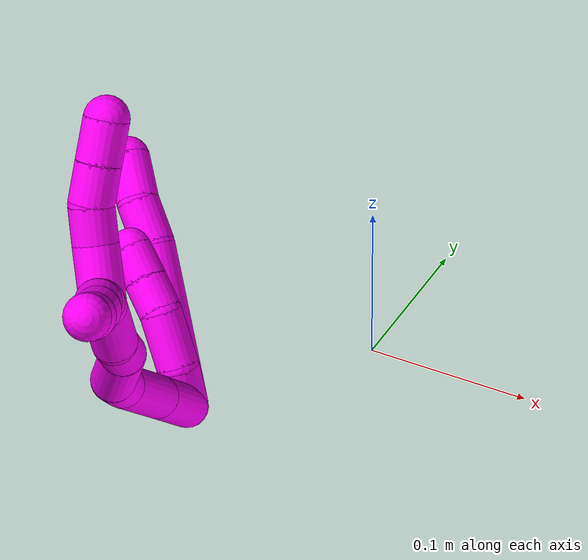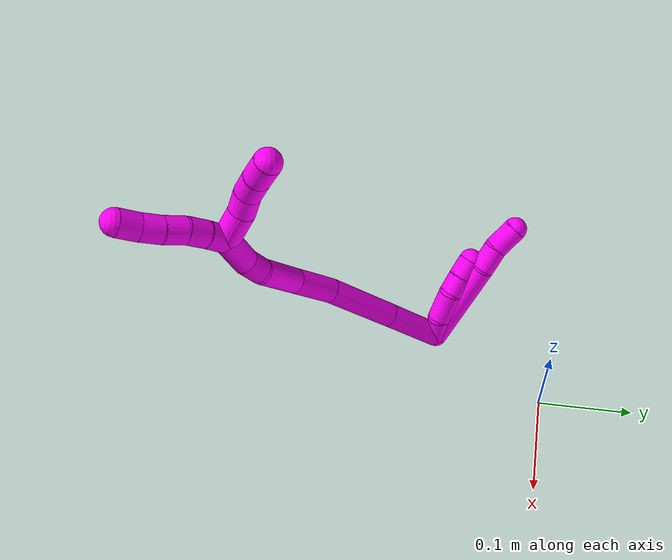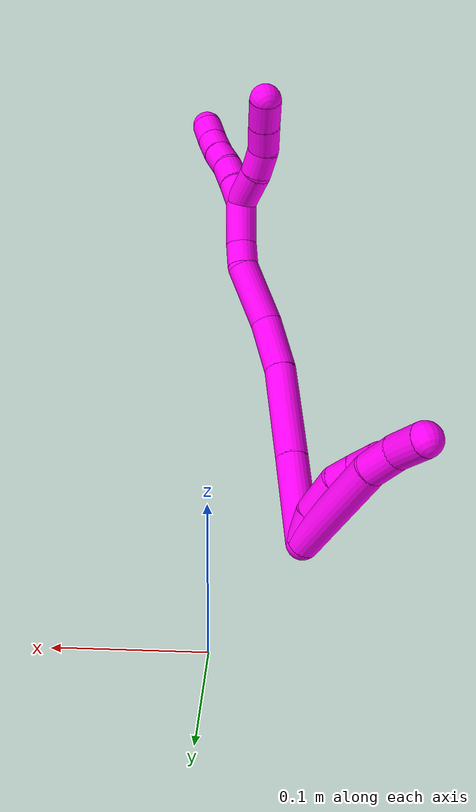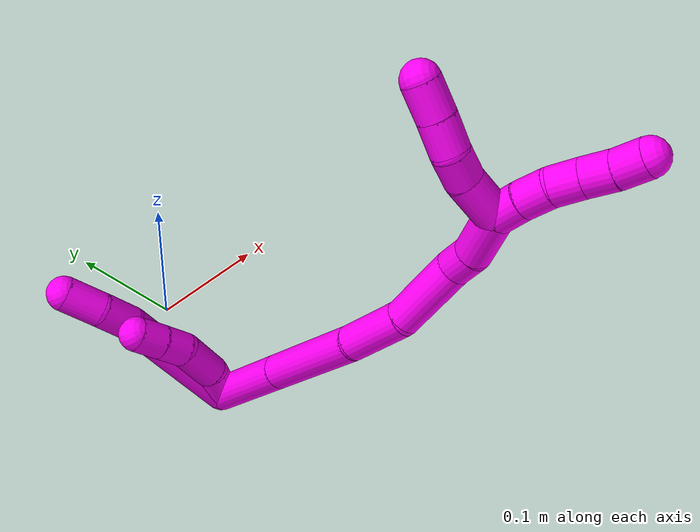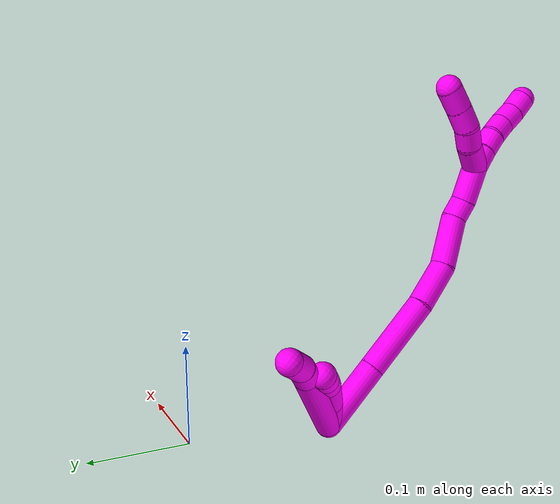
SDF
<sdf version="1.7">
 <world name="default">
  <model name="10">
   <static>0</static>
   <link name="10">
    <collision name="collision-cylinder-e_1_2_8">
     <pose>-0.04765 0.002988 -0.00275 -2.31468 -1.48577 2.25024</pose>
     <geometry><cylinder><radius>0.0125</radius><length>0.095646</length></cylinder></geometry>
     <surface>
      <friction><ode><mu>1.16</mu><mu2>1.16</mu2><slip1>0</slip1><slip2>0</slip2></ode></friction>
      <contact><ode><kp>1e+06</kp><kd>1</kd><max_vel>0</max_vel><min_depth>0.001</min_depth></ode></contact>
     </surface>
    </collision>
    <visual name="visual-cylinder-e_1_2_8">
     <pose>-0.04765 0.002988 -0.00275 -2.31468 -1.48577 2.25024</pose>
     <geometry><cylinder><radius>0.0125</radius><length>0.095646</length></cylinder></geometry>
     <material><ambient>1 0 0.964706 1</ambient></material>
    </visual>
    <collision name="collision-cylinder-e_2_8_9">
     <pose>-0.108197 0.004705 -0.007837 2.64316 -1.36738 -2.53607</pose>
     <geometry><cylinder><radius>0.0125</radius><length>0.026337</length></cylinder></geometry>
     <surface>
      <friction><ode><mu>1.16</mu><mu2>1.16</mu2><slip1>0</slip1><slip2>0</slip2></ode></friction>
      <contact><ode><kp>1e+06</kp><kd>1</kd><max_vel>0</max_vel><min_depth>0.001</min_depth></ode></contact>
     </surface>
    </collision>
    <visual name="visual-cylinder-e_2_8_9">
     <pose>-0.108197 0.004705 -0.007837 2.64316 -1.36738 -2.53607</pose>
     <geometry><cylinder><radius>0.0125</radius><length>0.026337</length></cylinder></geometry>
     <material><ambient>1 0 0.964706 1</ambient></material>
    </visual>
    <collision name="collision-cylinder-e_3_9_6">
     <pose>-0.134122 0.003722 -0.015314 -3.08548 -1.19442 3.05911</pose>
     <geometry><cylinder><radius>0.0125</radius><length>0.028017</length></cylinder></geometry>
     <surface>
      <friction><ode><mu>1.16</mu><mu2>1.16</mu2><slip1>0</slip1><slip2>0</slip2></ode></friction>
      <contact><ode><kp>1e+06</kp><kd>1</kd><max_vel>0</max_vel><min_depth>0.001</min_depth></ode></contact>
     </surface>
    </collision>
    <visual name="visual-cylinder-e_3_9_6">
     <pose>-0.134122 0.003722 -0.015314 -3.08548 -1.19442 3.05911</pose>
     <geometry><cylinder><radius>0.0125</radius><length>0.028017</length></cylinder></geometry>
     <material><ambient>1 0 0.964706 1</ambient></material>
    </visual>
    <collision name="collision-cylinder-e_1_2_10">
     <pose>-0.012114 0.000971 0.004971 -0.192918 -1.17474 0.128659</pose>
     <geometry><cylinder><radius>0.0125</radius><length>0.026261</length></cylinder></geometry>
     <surface>
      <friction><ode><mu>1.16</mu><mu2>1.16</mu2><slip1>0</slip1><slip2>0</slip2></ode></friction>
      <contact><ode><kp>1e+06</kp><kd>1</kd><max_vel>0</max_vel><min_depth>0.001</min_depth></ode></contact>
     </surface>
    </collision>
    <visual name="visual-cylinder-e_1_2_10">
     <pose>-0.012114 0.000971 0.004971 -0.192918 -1.17474 0.128659</pose>
     <geometry><cylinder><radius>0.0125</radius><length>0.026261</length></cylinder></geometry>
     <material><ambient>1 0 0.964706 1</ambient></material>
    </visual>
    <collision name="collision-cylinder-e_2_10_11">
     <pose>-0.040602 0.001509 0.011236 0.32354 -1.48767 -0.2981</pose>
     <geometry><cylinder><radius>0.0125</radius><length>0.032862</length></cylinder></geometry>
     <surface>
      <friction><ode><mu>1.16</mu><mu2>1.16</mu2><slip1>0</slip1><slip2>0</slip2></ode></friction>
      <contact><ode><kp>1e+06</kp><kd>1</kd><max_vel>0</max_vel><min_depth>0.001</min_depth></ode></contact>
     </surface>
    </collision>
    <visual name="visual-cylinder-e_2_10_11">
     <pose>-0.040602 0.001509 0.011236 0.32354 -1.48767 -0.2981</pose>
     <geometry><cylinder><radius>0.0125</radius><length>0.032862</length></cylinder></geometry>
     <material><ambient>1 0 0.964706 1</ambient></material>
    </visual>
    <collision name="collision-cylinder-e_3_11_12">
     <pose>-0.066719 -0.000775 0.010417 2.42246 -1.29009 -2.21494</pose>
     <geometry><cylinder><radius>0.0125</radius><length>0.020278</length></cylinder></geometry>
     <surface>
      <friction><ode><mu>1.16</mu><mu2>1.16</mu2><slip1>0</slip1><slip2>0</slip2></ode></friction>
      <contact><ode><kp>1e+06</kp><kd>1</kd><max_vel>0</max_vel><min_depth>0.001</min_depth></ode></contact>
     </surface>
    </collision>
    <visual name="visual-cylinder-e_3_11_12">
     <pose>-0.066719 -0.000775 0.010417 2.42246 -1.29009 -2.21494</pose>
     <geometry><cylinder><radius>0.0125</radius><length>0.020278</length></cylinder></geometry>
     <material><ambient>1 0 0.964706 1</ambient></material>
    </visual>
    <collision name="collision-cylinder-e_4_12_5">
     <pose>-0.086295 -0.004425 0.005826 2.51332 -1.26894 -2.31016</pose>
     <geometry><cylinder><radius>0.0125</radius><length>0.020599</length></cylinder></geometry>
     <surface>
      <friction><ode><mu>1.16</mu><mu2>1.16</mu2><slip1>0</slip1><slip2>0</slip2></ode></friction>
      <contact><ode><kp>1e+06</kp><kd>1</kd><max_vel>0</max_vel><min_depth>0.001</min_depth></ode></contact>
     </surface>
    </collision>
    <visual name="visual-cylinder-e_4_12_5">
     <pose>-0.086295 -0.004425 0.005826 2.51332 -1.26894 -2.31016</pose>
     <geometry><cylinder><radius>0.0125</radius><length>0.020599</length></cylinder></geometry>
     <material><ambient>1 0 0.964706 1</ambient></material>
    </visual>
    <collision name="collision-cylinder-e_1_2_13">
     <pose>-0.006797 -0.004027 0.03329 0.120387 -0.199981 -0.012092</pose>
     <geometry><cylinder><radius>0.0125</radius><length>0.068429</length></cylinder></geometry>
     <surface>
      <friction><ode><mu>1.16</mu><mu2>1.16</mu2><slip1>0</slip1><slip2>0</slip2></ode></friction>
      <contact><ode><kp>1e+06</kp><kd>1</kd><max_vel>0</max_vel><min_depth>0.001</min_depth></ode></contact>
     </surface>
    </collision>
    <visual name="visual-cylinder-e_1_2_13">
     <pose>-0.006797 -0.004027 0.03329 0.120387 -0.199981 -0.012092</pose>
     <geometry><cylinder><radius>0.0125</radius><length>0.068429</length></cylinder></geometry>
     <material><ambient>1 0 0.964706 1</ambient></material>
    </visual>
    <collision name="collision-cylinder-e_2_13_14">
     <pose>-0.021209 -0.012541 0.104822 0.116784 -0.195269 -0.011451</pose>
     <geometry><cylinder><radius>0.0125</radius><length>0.078501</length></cylinder></geometry>
     <surface>
      <friction><ode><mu>1.16</mu><mu2>1.16</mu2><slip1>0</slip1><slip2>0</slip2></ode></friction>
      <contact><ode><kp>1e+06</kp><kd>1</kd><max_vel>0</max_vel><min_depth>0.001</min_depth></ode></contact>
     </surface>
    </collision>
    <visual name="visual-cylinder-e_2_13_14">
     <pose>-0.021209 -0.012541 0.104822 0.116784 -0.195269 -0.011451</pose>
     <geometry><cylinder><radius>0.0125</radius><length>0.078501</length></cylinder></geometry>
     <material><ambient>1 0 0.964706 1</ambient></material>
    </visual>
    <collision name="collision-cylinder-e_3_14_15">
     <pose>-0.032162 -0.016485 0.16556 -0.024082 -0.147218 0.001776</pose>
     <geometry><cylinder><radius>0.0125</radius><length>0.045497</length></cylinder></geometry>
     <surface>
      <friction><ode><mu>1.16</mu><mu2>1.16</mu2><slip1>0</slip1><slip2>0</slip2></ode></friction>
      <contact><ode><kp>1e+06</kp><kd>1</kd><max_vel>0</max_vel><min_depth>0.001</min_depth></ode></contact>
     </surface>
    </collision>
    <visual name="visual-cylinder-e_3_14_15">
     <pose>-0.032162 -0.016485 0.16556 -0.024082 -0.147218 0.001776</pose>
     <geometry><cylinder><radius>0.0125</radius><length>0.045497</length></cylinder></geometry>
     <material><ambient>1 0 0.964706 1</ambient></material>
    </visual>
    <collision name="collision-cylinder-e_4_15_16">
     <pose>-0.042692 -0.008803 0.211745 -0.29277 -0.282919 0.041988</pose>
     <geometry><cylinder><radius>0.0125</radius><length>0.051532</length></cylinder></geometry>
     <surface>
      <friction><ode><mu>1.16</mu><mu2>1.16</mu2><slip1>0</slip1><slip2>0</slip2></ode></friction>
      <contact><ode><kp>1e+06</kp><kd>1</kd><max_vel>0</max_vel><min_depth>0.001</min_depth></ode></contact>
     </surface>
    </collision>
    <visual name="visual-cylinder-e_4_15_16">
     <pose>-0.042692 -0.008803 0.211745 -0.29277 -0.282919 0.041988</pose>
     <geometry><cylinder><radius>0.0125</radius><length>0.051532</length></cylinder></geometry>
     <material><ambient>1 0 0.964706 1</ambient></material>
    </visual>
    <collision name="collision-cylinder-e_5_16_17">
     <pose>-0.053656 -0.001983 0.244843 0.034044 -0.381009 -0.006566</pose>
     <geometry><cylinder><radius>0.0125</radius><length>0.020283</length></cylinder></geometry>
     <surface>
      <friction><ode><mu>1.16</mu><mu2>1.16</mu2><slip1>0</slip1><slip2>0</slip2></ode></friction>
      <contact><ode><kp>1e+06</kp><kd>1</kd><max_vel>0</max_vel><min_depth>0.001</min_depth></ode></contact>
     </surface>
    </collision>
    <visual name="visual-cylinder-e_5_16_17">
     <pose>-0.053656 -0.001983 0.244843 0.034044 -0.381009 -0.006566</pose>
     <geometry><cylinder><radius>0.0125</radius><length>0.020283</length></cylinder></geometry>
     <material><ambient>1 0 0.964706 1</ambient></material>
    </visual>
    <collision name="collision-cylinder-e_6_17_1">
     <pose>-0.068116 -0.001042 0.268528 -0.088118 -0.640847 0.02926</pose>
     <geometry><cylinder><radius>0.0125</radius><length>0.035758</length></cylinder></geometry>
     <surface>
      <friction><ode><mu>1.16</mu><mu2>1.16</mu2><slip1>0</slip1><slip2>0</slip2></ode></friction>
      <contact><ode><kp>1e+06</kp><kd>1</kd><max_vel>0</max_vel><min_depth>0.001</min_depth></ode></contact>
     </surface>
    </collision>
    <visual name="visual-cylinder-e_6_17_1">
     <pose>-0.068116 -0.001042 0.268528 -0.088118 -0.640847 0.02926</pose>
     <geometry><cylinder><radius>0.0125</radius><length>0.035758</length></cylinder></geometry>
     <material><ambient>1 0 0.964706 1</ambient></material>
    </visual>
    <collision name="collision-cylinder-e_1_1_18">
     <pose>-0.094984 0.00252 0.281947 -1.9273 -1.4202 1.78234</pose>
     <geometry><cylinder><radius>0.0125</radius><length>0.032727</length></cylinder></geometry>
     <surface>
      <friction><ode><mu>1.16</mu><mu2>1.16</mu2><slip1>0</slip1><slip2>0</slip2></ode></friction>
      <contact><ode><kp>1e+06</kp><kd>1</kd><max_vel>0</max_vel><min_depth>0.001</min_depth></ode></contact>
     </surface>
    </collision>
    <visual name="visual-cylinder-e_1_1_18">
     <pose>-0.094984 0.00252 0.281947 -1.9273 -1.4202 1.78234</pose>
     <geometry><cylinder><radius>0.0125</radius><length>0.032727</length></cylinder></geometry>
     <material><ambient>1 0 0.964706 1</ambient></material>
    </visual>
    <collision name="collision-cylinder-e_2_18_19">
     <pose>-0.121469 0.006694 0.282783 -0.835927 -1.33051 0.670582</pose>
     <geometry><cylinder><radius>0.0125</radius><length>0.021223</length></cylinder></geometry>
     <surface>
      <friction><ode><mu>1.16</mu><mu2>1.16</mu2><slip1>0</slip1><slip2>0</slip2></ode></friction>
      <contact><ode><kp>1e+06</kp><kd>1</kd><max_vel>0</max_vel><min_depth>0.001</min_depth></ode></contact>
     </surface>
    </collision>
    <visual name="visual-cylinder-e_2_18_19">
     <pose>-0.121469 0.006694 0.282783 -0.835927 -1.33051 0.670582</pose>
     <geometry><cylinder><radius>0.0125</radius><length>0.021223</length></cylinder></geometry>
     <material><ambient>1 0 0.964706 1</ambient></material>
    </visual>
    <collision name="collision-cylinder-e_3_19_20">
     <pose>-0.141723 0.013508 0.285867 -1.29645 -1.09448 0.864752</pose>
     <geometry><cylinder><radius>0.0125</radius><length>0.022387</length></cylinder></geometry>
     <surface>
      <friction><ode><mu>1.16</mu><mu2>1.16</mu2><slip1>0</slip1><slip2>0</slip2></ode></friction>
      <contact><ode><kp>1e+06</kp><kd>1</kd><max_vel>0</max_vel><min_depth>0.001</min_depth></ode></contact>
     </surface>
    </collision>
    <visual name="visual-cylinder-e_3_19_20">
     <pose>-0.141723 0.013508 0.285867 -1.29645 -1.09448 0.864752</pose>
     <geometry><cylinder><radius>0.0125</radius><length>0.022387</length></cylinder></geometry>
     <material><ambient>1 0 0.964706 1</ambient></material>
    </visual>
    <collision name="collision-cylinder-e_4_20_4">
     <pose>-0.162217 0.023717 0.288261 -1.38261 -1.10034 0.939352</pose>
     <geometry><cylinder><radius>0.0125</radius><length>0.023663</length></cylinder></geometry>
     <surface>
      <friction><ode><mu>1.16</mu><mu2>1.16</mu2><slip1>0</slip1><slip2>0</slip2></ode></friction>
      <contact><ode><kp>1e+06</kp><kd>1</kd><max_vel>0</max_vel><min_depth>0.001</min_depth></ode></contact>
     </surface>
    </collision>
    <visual name="visual-cylinder-e_4_20_4">
     <pose>-0.162217 0.023717 0.288261 -1.38261 -1.10034 0.939352</pose>
     <geometry><cylinder><radius>0.0125</radius><length>0.023663</length></cylinder></geometry>
     <material><ambient>1 0 0.964706 1</ambient></material>
    </visual>
    <collision name="collision-cylinder-e_1_1_21">
     <pose>-0.080251 0.00099 0.292668 -0.078002 -0.145079 0.005671</pose>
     <geometry><cylinder><radius>0.0125</radius><length>0.02</length></cylinder></geometry>
     <surface>
      <friction><ode><mu>1.16</mu><mu2>1.16</mu2><slip1>0</slip1><slip2>0</slip2></ode></friction>
      <contact><ode><kp>1e+06</kp><kd>1</kd><max_vel>0</max_vel><min_depth>0.001</min_depth></ode></contact>
     </surface>
    </collision>
    <visual name="visual-cylinder-e_1_1_21">
     <pose>-0.080251 0.00099 0.292668 -0.078002 -0.145079 0.005671</pose>
     <geometry><cylinder><radius>0.0125</radius><length>0.02</length></cylinder></geometry>
     <material><ambient>1 0 0.964706 1</ambient></material>
    </visual>
    <collision name="collision-cylinder-e_2_21_22">
     <pose>-0.082339 0.002207 0.312503 -0.044692 -0.06427 0.001437</pose>
     <geometry><cylinder><radius>0.0125</radius><length>0.02</length></cylinder></geometry>
     <surface>
      <friction><ode><mu>1.16</mu><mu2>1.16</mu2><slip1>0</slip1><slip2>0</slip2></ode></friction>
      <contact><ode><kp>1e+06</kp><kd>1</kd><max_vel>0</max_vel><min_depth>0.001</min_depth></ode></contact>
     </surface>
    </collision>
    <visual name="visual-cylinder-e_2_21_22">
     <pose>-0.082339 0.002207 0.312503 -0.044692 -0.06427 0.001437</pose>
     <geometry><cylinder><radius>0.0125</radius><length>0.02</length></cylinder></geometry>
     <material><ambient>1 0 0.964706 1</ambient></material>
    </visual>
    <collision name="collision-cylinder-e_3_22_23">
     <pose>-0.081594 0.003022 0.332368 -0.037252 0.13925 -0.002598</pose>
     <geometry><cylinder><radius>0.0125</radius><length>0.02</length></cylinder></geometry>
     <surface>
      <friction><ode><mu>1.16</mu><mu2>1.16</mu2><slip1>0</slip1><slip2>0</slip2></ode></friction>
      <contact><ode><kp>1e+06</kp><kd>1</kd><max_vel>0</max_vel><min_depth>0.001</min_depth></ode></contact>
     </surface>
    </collision>
    <visual name="visual-cylinder-e_3_22_23">
     <pose>-0.081594 0.003022 0.332368 -0.037252 0.13925 -0.002598</pose>
     <geometry><cylinder><radius>0.0125</radius><length>0.02</length></cylinder></geometry>
     <material><ambient>1 0 0.964706 1</ambient></material>
    </visual>
    <collision name="collision-cylinder-e_4_23_24">
     <pose>-0.079406 0.00277 0.352213 0.062278 0.080036 0.002494</pose>
     <geometry><cylinder><radius>0.0125</radius><length>0.02</length></cylinder></geometry>
     <surface>
      <friction><ode><mu>1.16</mu><mu2>1.16</mu2><slip1>0</slip1><slip2>0</slip2></ode></friction>
      <contact><ode><kp>1e+06</kp><kd>1</kd><max_vel>0</max_vel><min_depth>0.001</min_depth></ode></contact>
     </surface>
    </collision>
    <visual name="visual-cylinder-e_4_23_24">
     <pose>-0.079406 0.00277 0.352213 0.062278 0.080036 0.002494</pose>
     <geometry><cylinder><radius>0.0125</radius><length>0.02</length></cylinder></geometry>
     <material><ambient>1 0 0.964706 1</ambient></material>
    </visual>
    <collision name="collision-cylinder-e_5_24_3">
     <pose>-0.078984 0.001954 0.372153 0.0196 -0.037762 -0.00037</pose>
     <geometry><cylinder><radius>0.0125</radius><length>0.02</length></cylinder></geometry>
     <surface>
      <friction><ode><mu>1.16</mu><mu2>1.16</mu2><slip1>0</slip1><slip2>0</slip2></ode></friction>
      <contact><ode><kp>1e+06</kp><kd>1</kd><max_vel>0</max_vel><min_depth>0.001</min_depth></ode></contact>
     </surface>
    </collision>
    <visual name="visual-cylinder-e_5_24_3">
     <pose>-0.078984 0.001954 0.372153 0.0196 -0.037762 -0.00037</pose>
     <geometry><cylinder><radius>0.0125</radius><length>0.02</length></cylinder></geometry>
     <material><ambient>1 0 0.964706 1</ambient></material>
    </visual>
    <collision name="collision-sphere-3">
     <pose>-0.079362 0.001758 0.382144 0 -0 0</pose>
     <geometry><sphere><radius>0.0125</radius></sphere></geometry>
     <surface>
      <friction><ode><mu>1.16</mu><mu2>1.16</mu2><slip1>0</slip1><slip2>0</slip2></ode></friction>
      <contact><ode><kp>1e+06</kp><kd>1</kd><max_vel>0</max_vel><min_depth>0.001</min_depth></ode></contact>
     </surface>
    </collision>
    <visual name="visual-sphere-3">
     <pose>-0.079362 0.001758 0.382144 0 -0 0</pose>
     <geometry><sphere><radius>0.0125</radius></sphere></geometry>
     <material><ambient>1 0 0.964706 1</ambient></material>
    </visual>
    <collision name="collision-sphere-24">
     <pose>-0.078607 0.00215 0.362162 0 -0 0</pose>
     <geometry><sphere><radius>0.0125</radius></sphere></geometry>
     <surface>
      <friction><ode><mu>1.16</mu><mu2>1.16</mu2><slip1>0</slip1><slip2>0</slip2></ode></friction>
      <contact><ode><kp>1e+06</kp><kd>1</kd><max_vel>0</max_vel><min_depth>0.001</min_depth></ode></contact>
     </surface>
    </collision>
    <visual name="visual-sphere-24">
     <pose>-0.078607 0.00215 0.362162 0 -0 0</pose>
     <geometry><sphere><radius>0.0125</radius></sphere></geometry>
     <material><ambient>1 0 0.964706 1</ambient></material>
    </visual>
    <collision name="collision-sphere-23">
     <pose>-0.080206 0.003391 0.342265 0 -0 0</pose>
     <geometry><sphere><radius>0.0125</radius></sphere></geometry>
     <surface>
      <friction><ode><mu>1.16</mu><mu2>1.16</mu2><slip1>0</slip1><slip2>0</slip2></ode></friction>
      <contact><ode><kp>1e+06</kp><kd>1</kd><max_vel>0</max_vel><min_depth>0.001</min_depth></ode></contact>
     </surface>
    </collision>
    <visual name="visual-sphere-23">
     <pose>-0.080206 0.003391 0.342265 0 -0 0</pose>
     <geometry><sphere><radius>0.0125</radius></sphere></geometry>
     <material><ambient>1 0 0.964706 1</ambient></material>
    </visual>
    <collision name="collision-sphere-22">
     <pose>-0.082982 0.002653 0.322472 0 -0 0</pose>
     <geometry><sphere><radius>0.0125</radius></sphere></geometry>
     <surface>
      <friction><ode><mu>1.16</mu><mu2>1.16</mu2><slip1>0</slip1><slip2>0</slip2></ode></friction>
      <contact><ode><kp>1e+06</kp><kd>1</kd><max_vel>0</max_vel><min_depth>0.001</min_depth></ode></contact>
     </surface>
    </collision>
    <visual name="visual-sphere-22">
     <pose>-0.082982 0.002653 0.322472 0 -0 0</pose>
     <geometry><sphere><radius>0.0125</radius></sphere></geometry>
     <material><ambient>1 0 0.964706 1</ambient></material>
    </visual>
    <collision name="collision-sphere-21">
     <pose>-0.081697 0.001761 0.302533 0 -0 0</pose>
     <geometry><sphere><radius>0.0125</radius></sphere></geometry>
     <surface>
      <friction><ode><mu>1.16</mu><mu2>1.16</mu2><slip1>0</slip1><slip2>0</slip2></ode></friction>
      <contact><ode><kp>1e+06</kp><kd>1</kd><max_vel>0</max_vel><min_depth>0.001</min_depth></ode></contact>
     </surface>
    </collision>
    <visual name="visual-sphere-21">
     <pose>-0.081697 0.001761 0.302533 0 -0 0</pose>
     <geometry><sphere><radius>0.0125</radius></sphere></geometry>
     <material><ambient>1 0 0.964706 1</ambient></material>
    </visual>
    <collision name="collision-sphere-4">
     <pose>-0.172763 0.028985 0.289264 0 -0 0</pose>
     <geometry><sphere><radius>0.0125</radius></sphere></geometry>
     <surface>
      <friction><ode><mu>1.16</mu><mu2>1.16</mu2><slip1>0</slip1><slip2>0</slip2></ode></friction>
      <contact><ode><kp>1e+06</kp><kd>1</kd><max_vel>0</max_vel><min_depth>0.001</min_depth></ode></contact>
     </surface>
    </collision>
    <visual name="visual-sphere-4">
     <pose>-0.172763 0.028985 0.289264 0 -0 0</pose>
     <geometry><sphere><radius>0.0125</radius></sphere></geometry>
     <material><ambient>1 0 0.964706 1</ambient></material>
    </visual>
    <collision name="collision-sphere-20">
     <pose>-0.151671 0.018448 0.287257 0 -0 0</pose>
     <geometry><sphere><radius>0.0125</radius></sphere></geometry>
     <surface>
      <friction><ode><mu>1.16</mu><mu2>1.16</mu2><slip1>0</slip1><slip2>0</slip2></ode></friction>
      <contact><ode><kp>1e+06</kp><kd>1</kd><max_vel>0</max_vel><min_depth>0.001</min_depth></ode></contact>
     </surface>
    </collision>
    <visual name="visual-sphere-20">
     <pose>-0.151671 0.018448 0.287257 0 -0 0</pose>
     <geometry><sphere><radius>0.0125</radius></sphere></geometry>
     <material><ambient>1 0 0.964706 1</ambient></material>
    </visual>
    <collision name="collision-sphere-11">
     <pose>-0.056977 0.001075 0.01253 0 -0 0</pose>
     <geometry><sphere><radius>0.0125</radius></sphere></geometry>
     <surface>
      <friction><ode><mu>1.16</mu><mu2>1.16</mu2><slip1>0</slip1><slip2>0</slip2></ode></friction>
      <contact><ode><kp>1e+06</kp><kd>1</kd><max_vel>0</max_vel><min_depth>0.001</min_depth></ode></contact>
     </surface>
    </collision>
    <visual name="visual-sphere-11">
     <pose>-0.056977 0.001075 0.01253 0 -0 0</pose>
     <geometry><sphere><radius>0.0125</radius></sphere></geometry>
     <material><ambient>1 0 0.964706 1</ambient></material>
    </visual>
    <collision name="collision-sphere-10">
     <pose>-0.024228 0.001942 0.009943 0 -0 0</pose>
     <geometry><sphere><radius>0.0125</radius></sphere></geometry>
     <surface>
      <friction><ode><mu>1.16</mu><mu2>1.16</mu2><slip1>0</slip1><slip2>0</slip2></ode></friction>
      <contact><ode><kp>1e+06</kp><kd>1</kd><max_vel>0</max_vel><min_depth>0.001</min_depth></ode></contact>
     </surface>
    </collision>
    <visual name="visual-sphere-10">
     <pose>-0.024228 0.001942 0.009943 0 -0 0</pose>
     <geometry><sphere><radius>0.0125</radius></sphere></geometry>
     <material><ambient>1 0 0.964706 1</ambient></material>
    </visual>
    <collision name="collision-sphere-6">
     <pose>-0.14715 0.004011 -0.020455 0 -0 0</pose>
     <geometry><sphere><radius>0.0125</radius></sphere></geometry>
     <surface>
      <friction><ode><mu>1.16</mu><mu2>1.16</mu2><slip1>0</slip1><slip2>0</slip2></ode></friction>
      <contact><ode><kp>1e+06</kp><kd>1</kd><max_vel>0</max_vel><min_depth>0.001</min_depth></ode></contact>
     </surface>
    </collision>
    <visual name="visual-sphere-6">
     <pose>-0.14715 0.004011 -0.020455 0 -0 0</pose>
     <geometry><sphere><radius>0.0125</radius></sphere></geometry>
     <material><ambient>1 0 0.964706 1</ambient></material>
    </visual>
    <collision name="collision-sphere-9">
     <pose>-0.121094 0.003433 -0.010173 0 -0 0</pose>
     <geometry><sphere><radius>0.0125</radius></sphere></geometry>
     <surface>
      <friction><ode><mu>1.16</mu><mu2>1.16</mu2><slip1>0</slip1><slip2>0</slip2></ode></friction>
      <contact><ode><kp>1e+06</kp><kd>1</kd><max_vel>0</max_vel><min_depth>0.001</min_depth></ode></contact>
     </surface>
    </collision>
    <visual name="visual-sphere-9">
     <pose>-0.121094 0.003433 -0.010173 0 -0 0</pose>
     <geometry><sphere><radius>0.0125</radius></sphere></geometry>
     <material><ambient>1 0 0.964706 1</ambient></material>
    </visual>
    <collision name="collision-sphere-2">
     <geometry><sphere><radius>0.0125</radius></sphere></geometry>
     <surface>
      <friction><ode><mu>1.16</mu><mu2>1.16</mu2><slip1>0</slip1><slip2>0</slip2></ode></friction>
      <contact><ode><kp>1e+06</kp><kd>1</kd><max_vel>0</max_vel><min_depth>0.001</min_depth></ode></contact>
     </surface>
    </collision>
    <visual name="visual-sphere-2">
     <geometry><sphere><radius>0.0125</radius></sphere></geometry>
     <material><ambient>1 0 0.964706 1</ambient></material>
    </visual>
    <collision name="collision-sphere-19">
     <pose>-0.131775 0.008568 0.284476 0 -0 0</pose>
     <geometry><sphere><radius>0.0125</radius></sphere></geometry>
     <surface>
      <friction><ode><mu>1.16</mu><mu2>1.16</mu2><slip1>0</slip1><slip2>0</slip2></ode></friction>
      <contact><ode><kp>1e+06</kp><kd>1</kd><max_vel>0</max_vel><min_depth>0.001</min_depth></ode></contact>
     </surface>
    </collision>
    <visual name="visual-sphere-19">
     <pose>-0.131775 0.008568 0.284476 0 -0 0</pose>
     <geometry><sphere><radius>0.0125</radius></sphere></geometry>
     <material><ambient>1 0 0.964706 1</ambient></material>
    </visual>
    <collision name="collision-sphere-8">
     <pose>-0.0953 0.005977 -0.0055 0 -0 0</pose>
     <geometry><sphere><radius>0.0125</radius></sphere></geometry>
     <surface>
      <friction><ode><mu>1.16</mu><mu2>1.16</mu2><slip1>0</slip1><slip2>0</slip2></ode></friction>
      <contact><ode><kp>1e+06</kp><kd>1</kd><max_vel>0</max_vel><min_depth>0.001</min_depth></ode></contact>
     </surface>
    </collision>
    <visual name="visual-sphere-8">
     <pose>-0.0953 0.005977 -0.0055 0 -0 0</pose>
     <geometry><sphere><radius>0.0125</radius></sphere></geometry>
     <material><ambient>1 0 0.964706 1</ambient></material>
    </visual>
    <collision name="collision-sphere-12">
     <pose>-0.076461 -0.002626 0.008303 0 -0 0</pose>
     <geometry><sphere><radius>0.0125</radius></sphere></geometry>
     <surface>
      <friction><ode><mu>1.16</mu><mu2>1.16</mu2><slip1>0</slip1><slip2>0</slip2></ode></friction>
      <contact><ode><kp>1e+06</kp><kd>1</kd><max_vel>0</max_vel><min_depth>0.001</min_depth></ode></contact>
     </surface>
    </collision>
    <visual name="visual-sphere-12">
     <pose>-0.076461 -0.002626 0.008303 0 -0 0</pose>
     <geometry><sphere><radius>0.0125</radius></sphere></geometry>
     <material><ambient>1 0 0.964706 1</ambient></material>
    </visual>
    <collision name="collision-sphere-5">
     <pose>-0.096129 -0.006225 0.003349 0 -0 0</pose>
     <geometry><sphere><radius>0.0125</radius></sphere></geometry>
     <surface>
      <friction><ode><mu>1.16</mu><mu2>1.16</mu2><slip1>0</slip1><slip2>0</slip2></ode></friction>
      <contact><ode><kp>1e+06</kp><kd>1</kd><max_vel>0</max_vel><min_depth>0.001</min_depth></ode></contact>
     </surface>
    </collision>
    <visual name="visual-sphere-5">
     <pose>-0.096129 -0.006225 0.003349 0 -0 0</pose>
     <geometry><sphere><radius>0.0125</radius></sphere></geometry>
     <material><ambient>1 0 0.964706 1</ambient></material>
    </visual>
    <collision name="collision-sphere-13">
     <pose>-0.013594 -0.008054 0.06658 0 -0 0</pose>
     <geometry><sphere><radius>0.0125</radius></sphere></geometry>
     <surface>
      <friction><ode><mu>1.16</mu><mu2>1.16</mu2><slip1>0</slip1><slip2>0</slip2></ode></friction>
      <contact><ode><kp>1e+06</kp><kd>1</kd><max_vel>0</max_vel><min_depth>0.001</min_depth></ode></contact>
     </surface>
    </collision>
    <visual name="visual-sphere-13">
     <pose>-0.013594 -0.008054 0.06658 0 -0 0</pose>
     <geometry><sphere><radius>0.0125</radius></sphere></geometry>
     <material><ambient>1 0 0.964706 1</ambient></material>
    </visual>
    <collision name="collision-sphere-14">
     <pose>-0.028825 -0.017027 0.143064 0 -0 0</pose>
     <geometry><sphere><radius>0.0125</radius></sphere></geometry>
     <surface>
      <friction><ode><mu>1.16</mu><mu2>1.16</mu2><slip1>0</slip1><slip2>0</slip2></ode></friction>
      <contact><ode><kp>1e+06</kp><kd>1</kd><max_vel>0</max_vel><min_depth>0.001</min_depth></ode></contact>
     </surface>
    </collision>
    <visual name="visual-sphere-14">
     <pose>-0.028825 -0.017027 0.143064 0 -0 0</pose>
     <geometry><sphere><radius>0.0125</radius></sphere></geometry>
     <material><ambient>1 0 0.964706 1</ambient></material>
    </visual>
    <collision name="collision-sphere-15">
     <pose>-0.035499 -0.015944 0.188056 0 -0 0</pose>
     <geometry><sphere><radius>0.0125</radius></sphere></geometry>
     <surface>
      <friction><ode><mu>1.16</mu><mu2>1.16</mu2><slip1>0</slip1><slip2>0</slip2></ode></friction>
      <contact><ode><kp>1e+06</kp><kd>1</kd><max_vel>0</max_vel><min_depth>0.001</min_depth></ode></contact>
     </surface>
    </collision>
    <visual name="visual-sphere-15">
     <pose>-0.035499 -0.015944 0.188056 0 -0 0</pose>
     <geometry><sphere><radius>0.0125</radius></sphere></geometry>
     <material><ambient>1 0 0.964706 1</ambient></material>
    </visual>
    <collision name="collision-sphere-16">
     <pose>-0.049885 -0.001662 0.235434 0 -0 0</pose>
     <geometry><sphere><radius>0.0125</radius></sphere></geometry>
     <surface>
      <friction><ode><mu>1.16</mu><mu2>1.16</mu2><slip1>0</slip1><slip2>0</slip2></ode></friction>
      <contact><ode><kp>1e+06</kp><kd>1</kd><max_vel>0</max_vel><min_depth>0.001</min_depth></ode></contact>
     </surface>
    </collision>
    <visual name="visual-sphere-16">
     <pose>-0.049885 -0.001662 0.235434 0 -0 0</pose>
     <geometry><sphere><radius>0.0125</radius></sphere></geometry>
     <material><ambient>1 0 0.964706 1</ambient></material>
    </visual>
    <collision name="collision-sphere-17">
     <pose>-0.057427 -0.002303 0.254252 0 -0 0</pose>
     <geometry><sphere><radius>0.0125</radius></sphere></geometry>
     <surface>
      <friction><ode><mu>1.16</mu><mu2>1.16</mu2><slip1>0</slip1><slip2>0</slip2></ode></friction>
      <contact><ode><kp>1e+06</kp><kd>1</kd><max_vel>0</max_vel><min_depth>0.001</min_depth></ode></contact>
     </surface>
    </collision>
    <visual name="visual-sphere-17">
     <pose>-0.057427 -0.002303 0.254252 0 -0 0</pose>
     <geometry><sphere><radius>0.0125</radius></sphere></geometry>
     <material><ambient>1 0 0.964706 1</ambient></material>
    </visual>
    <collision name="collision-sphere-1">
     <pose>-0.078806 0.000219 0.282804 0 -0 0</pose>
     <geometry><sphere><radius>0.0125</radius></sphere></geometry>
     <surface>
      <friction><ode><mu>1.16</mu><mu2>1.16</mu2><slip1>0</slip1><slip2>0</slip2></ode></friction>
      <contact><ode><kp>1e+06</kp><kd>1</kd><max_vel>0</max_vel><min_depth>0.001</min_depth></ode></contact>
     </surface>
    </collision>
    <visual name="visual-sphere-1">
     <pose>-0.078806 0.000219 0.282804 0 -0 0</pose>
     <geometry><sphere><radius>0.0125</radius></sphere></geometry>
     <material><ambient>1 0 0.964706 1</ambient></material>
    </visual>
    <collision name="collision-sphere-18">
     <pose>-0.111162 0.004821 0.28109 0 -0 0</pose>
     <geometry><sphere><radius>0.0125</radius></sphere></geometry>
     <surface>
      <friction><ode><mu>1.16</mu><mu2>1.16</mu2><slip1>0</slip1><slip2>0</slip2></ode></friction>
      <contact><ode><kp>1e+06</kp><kd>1</kd><max_vel>0</max_vel><min_depth>0.001</min_depth></ode></contact>
     </surface>
    </collision>
    <visual name="visual-sphere-18">
     <pose>-0.111162 0.004821 0.28109 0 -0 0</pose>
     <geometry><sphere><radius>0.0125</radius></sphere></geometry>
     <material><ambient>1 0 0.964706 1</ambient></material>
    </visual>
    <inertial>
     <pose>-0.061352 -0.001003 0.140186 0 -0 0</pose>
     <mass>0.75</mass>
     <inertia><ixx>7.7e-05</ixx><ixy>0</ixy><ixz>0</ixz><iyy>0.000217</iyy><iyz>0</iyz><izz>0.00015</izz></inertia>
    </inertial>
   </link>
   <pose>-0.059002 -0.12008 0.022345 0.419536 0.906062 -0.647269</pose>
  </model>
 </world>
</sdf>
